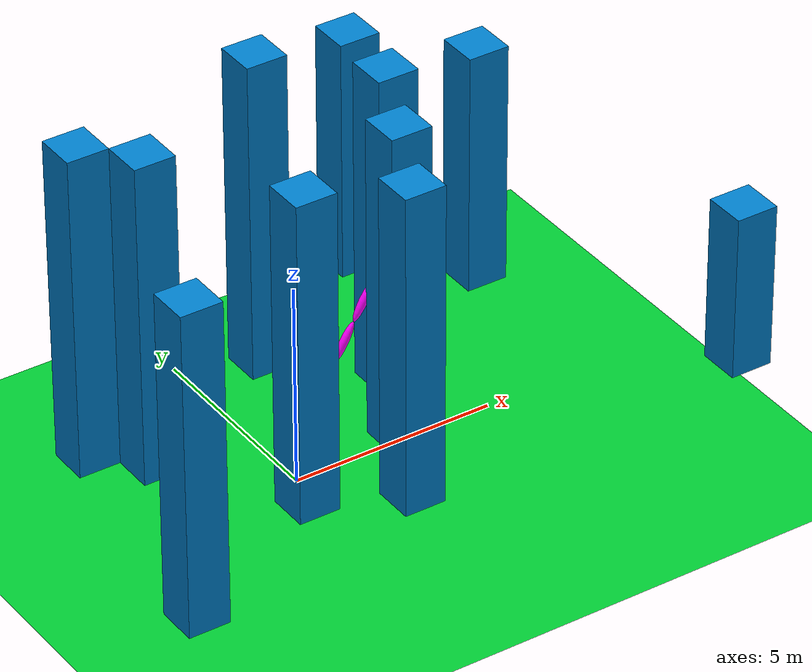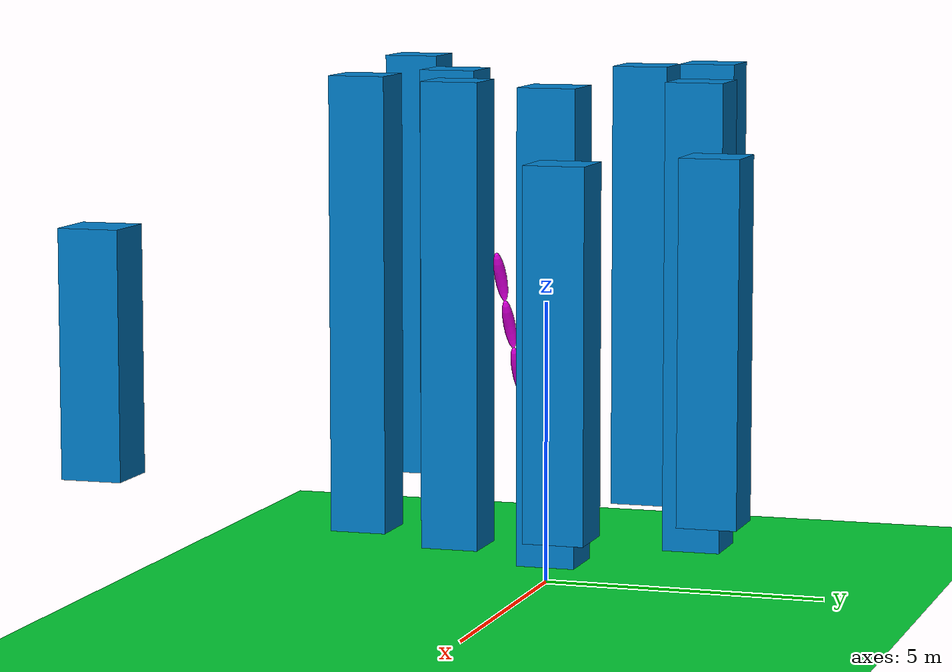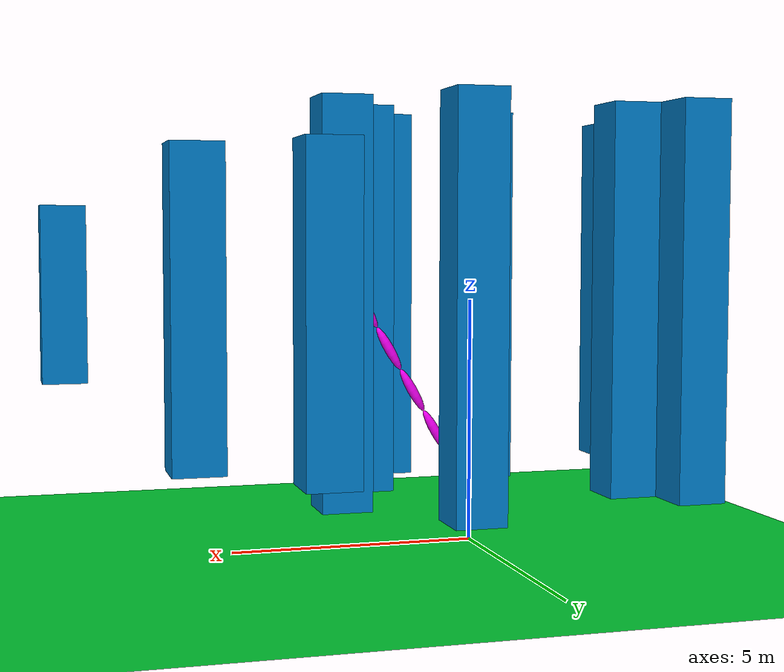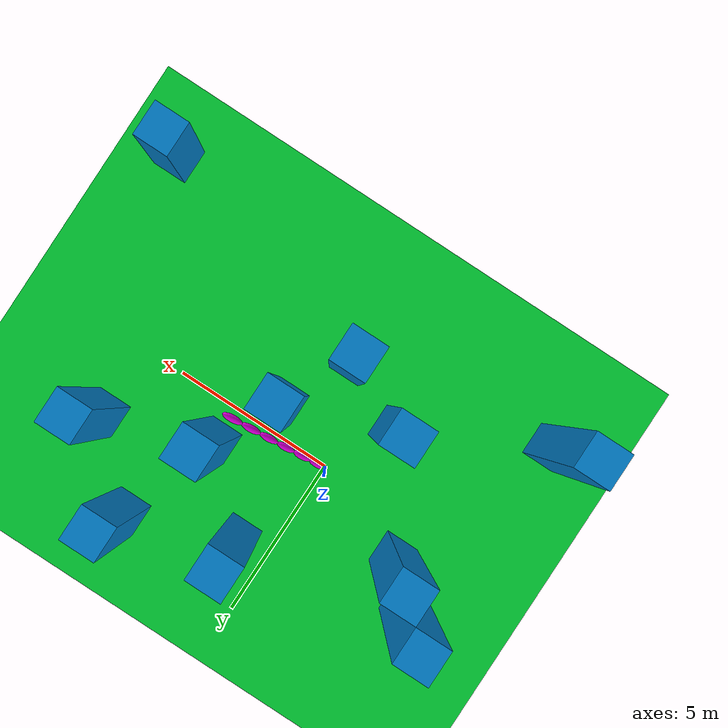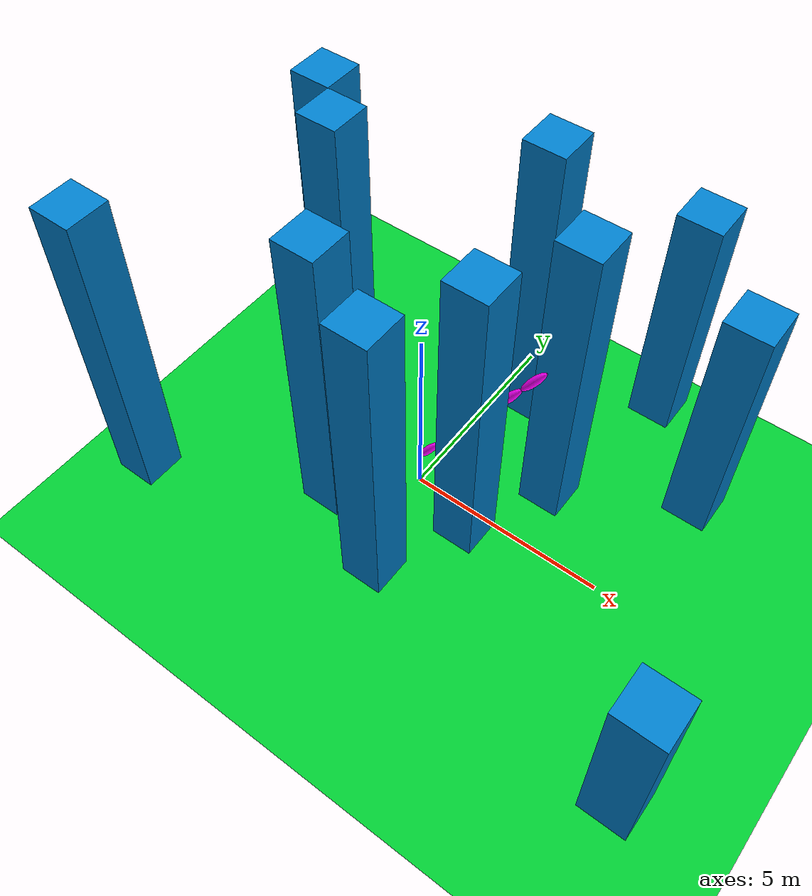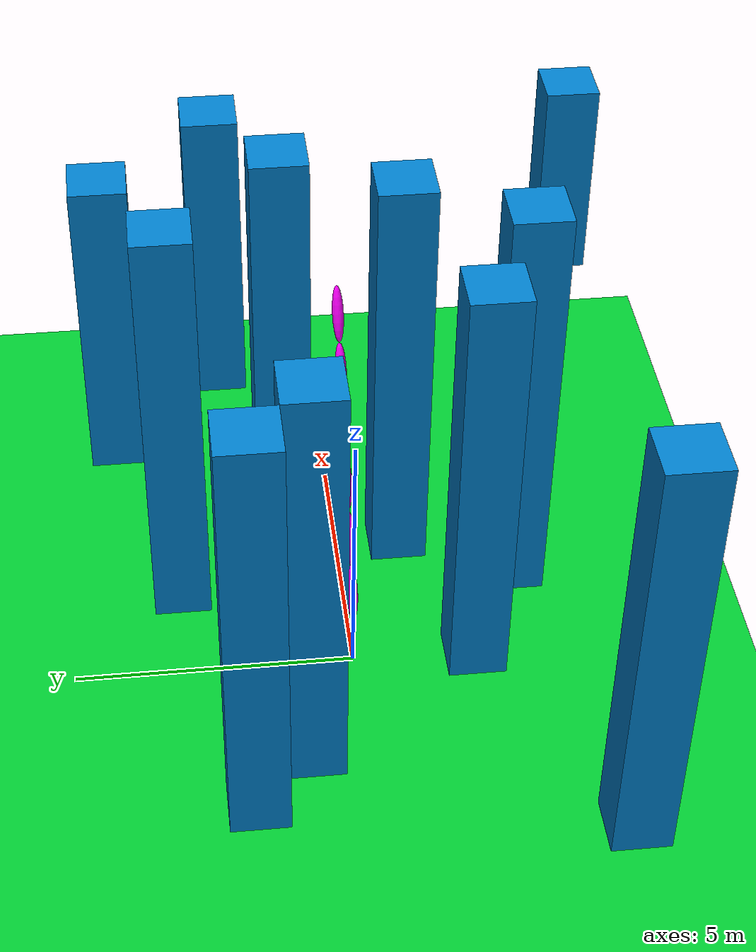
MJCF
<mujoco model="snake">

    <visual>
        <headlight ambient="0.5 0.5 0.5"/>
    </visual>

    <option timestep="0.01" gravity="0 0 -1"/>

<!-- Pillars -->

	<worldbody>
		<body pos="3 1 5">
			<joint type="free"/>
			<geom type="box" size=".5 .5 4" rgba="0 .5 .8 1" mass="1000000"/>
		</body>
	</worldbody>

	<worldbody>
		<body pos="1 3 5">
			<joint type="free"/>
			<geom type="box" size=".5 .5 4" rgba="0 .5 .8 1" mass="1000000"/>
		</body>
	</worldbody>

	<worldbody>
		<body pos="-3 1 5">
			<joint type="free"/>
			<geom type="box" size=".5 .5 4" rgba="0 .5 .8 1" mass="1000000"/>
		</body>
	</worldbody>

	<worldbody>
		<body pos="1 -3 5">
			<joint type="free"/>
			<geom type="box" size=".5 .5 4" rgba="0 .5 .8 1" mass="1000000"/>
		</body>
	</worldbody>

	<worldbody>
		<body pos="-1 -2 5">
			<joint type="free"/>
			<geom type="box" size=".5 .5 4" rgba="0 .5 .8 1" mass="1000000"/>
		</body>
	</worldbody>

	<worldbody>
		<body pos="2 -1 5">
			<joint type="free"/>
			<geom type="box" size=".5 .5 4" rgba="0 .5 .8 1" mass="1000000"/>
		</body>
	</worldbody>

	<worldbody>
		<body pos="4 4 5">
			<joint type="free"/>
			<geom type="box" size=".5 .5 3" rgba="0 .5 .8 1" mass="10000"/>
		</body>
	</worldbody>

	<worldbody>
		<body pos="-5 -4 5">
			<joint type="free"/>
			<geom type="box" size=".5 .5 4" rgba="0 .5 .8 1" mass="10000"/>
		</body>
	</worldbody>

	<worldbody>
		<body pos="-4 2 5">
			<joint type="free"/>
			<geom type="box" size=".5 .5 4" rgba="0 .5 .8 1" mass="10000"/>
		</body>
	</worldbody>

	<worldbody>
		<body pos="8 -5 5">
			<joint type="free"/>
			<geom type="box" size=".5 .5 2" rgba="0 .5 .8 1" mass="10000"/>
		</body>
	</worldbody>

	<worldbody>
		<body pos="6 2 5">
			<joint type="free"/>
			<geom type="box" size=".5 .5 3" rgba="0 .5 .8 1" mass="10000"/>
		</body>
	</worldbody>

<!-- Snake -->

    <worldbody>
        <light diffuse=".5 .5 .5" pos="0 0 3" dir="0 0 -1"/>
        <geom type="plane" size="20 20 0.1" rgba="0 .8 .2 1"/>

        <body pos="0 0 1"  euler="0 30 0">
            <joint type="free" axis="-1 0 0" pos="0 0 -0.5"/>
            <geom type="ellipsoid" size=".1" fromto="0 0 0 0 0 1" rgba="225 0 225 1"/>

            <body pos="0 0 1" euler="0 0 0">
                <joint name="elbow1" type="hinge" axis="-1 0 0" pos="0 0 0" range="-50 50"/>
                <geom type="ellipsoid" size="0.1" fromto="0 0 0 0 0 1" rgba="225 0 225 1"/>

                <body pos="0 0 1" euler="0 0 0">
                    <joint name="elbow2" type="hinge" axis="-1 0 0" pos="0 0 0" range="-50 50"/>
                    <geom type="ellipsoid" size="0.1" fromto="0 0 0 0 0 1" rgba="225 0 225 1"/>

                    <body pos="0 0 1" euler="0 0 0">
                        <joint name="elbow3" type="hinge" axis="-1 0 0" pos="0 0 0" range="-50 50"/>
                        <geom type="ellipsoid" size="0.1" fromto="0 0 0 0 0 1" rgba="225 0 225 1"/>

                        <body pos="0 0 1" euler="0 0 0">
                            <joint name="elbow4" type="hinge" axis="-1 0 0" pos="0 0 0" range="-50 50"/>
                            <geom type="ellipsoid" size="0.1" fromto="0 0 0 0 0 1" rgba="225 0 225 1"/>

                            <body pos="0 0 1" euler="0 0 0">
                                <joint name="elbow5" type="hinge" axis="-1 0 0" pos="0 0 0" range="-50 50"/>
                                <geom type="ellipsoid" size="0.1" fromto="0 0 0 0 0 1" rgba="225 0 225 1"/>

                            </body>
                        </body>
                    </body>

                </body>
            </body>
        </body>

    </worldbody>

<!-- Set motors to the hinges -->

    <actuator>
        <motor name="belly_1"  gear="40"  joint="elbow1"/>
        <motor name="belly_2"  gear="40"  joint="elbow2"/>
        <motor name="belly_3"  gear="40"  joint="elbow3"/>
        <motor name="belly_4"  gear="40"  joint="elbow4"/>
        <motor name="belly_5"  gear="40"  joint="elbow5"/>
    </actuator>

</mujoco>
